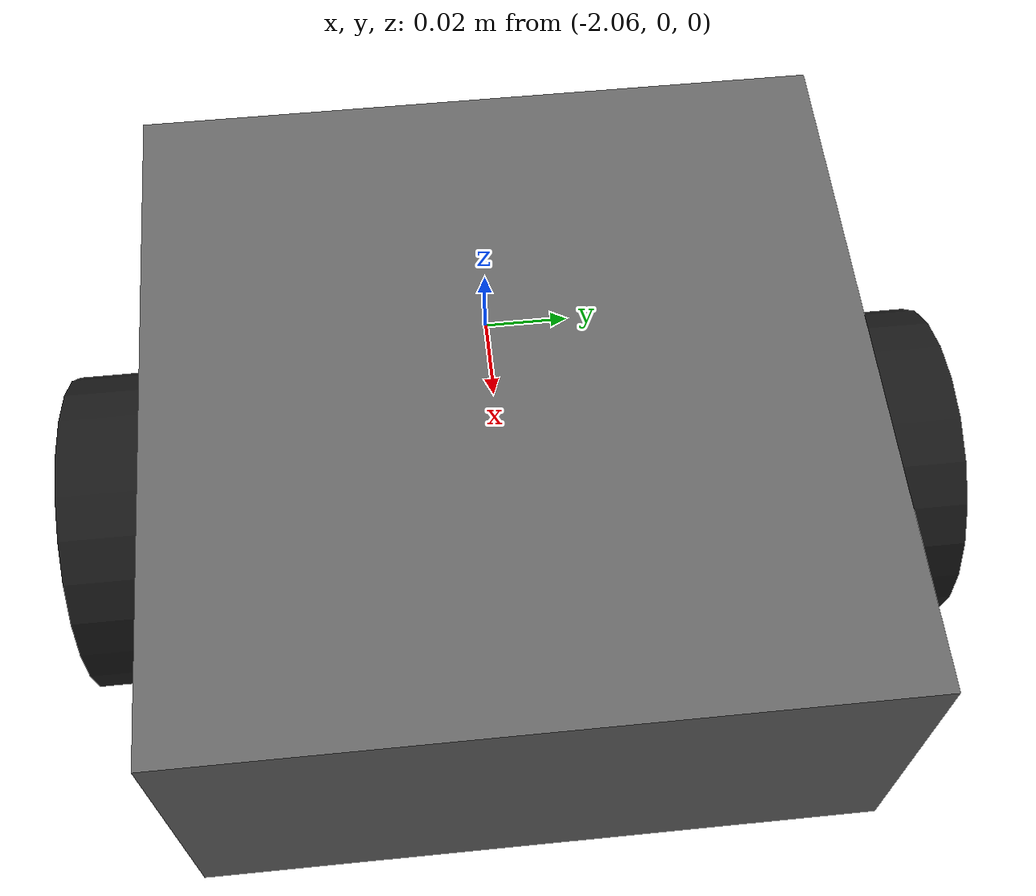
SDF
<?xml version="1.0" ?>
<sdf version="1.9">
  <model name="turtlebot3">
    <pose>-2 0 0.035 0 0 0</pose>
    <link name="base_link">
      <inertial><mass>1.0</mass><inertia><ixx>0.001</ixx><ixy>0</ixy><ixz>0</ixz><iyy>0.001</iyy><iyz>0</iyz><izz>0.001</izz></inertia></inertial>
      <visual name="body"><geometry><box><size>0.14 0.14 0.07</size></box></geometry><material><ambient>0.3 0.3 0.3 1</ambient><diffuse>0.4 0.4 0.4 1</diffuse></material></visual>
      <collision name="body"><geometry><box><size>0.14 0.14 0.07</size></box></geometry></collision>
      <collision name="caster"><pose>-0.05 0 -0.023 0 0 0</pose><geometry><sphere><radius>0.012</radius></sphere></geometry><surface><friction><ode><mu>0</mu><mu2>0</mu2><slip1>1</slip1><slip2>1</slip2></ode></friction></surface></collision>
    </link>
    <link name="wl"><pose relative_to="base_link">0 0.08 -0.012 -1.5708 0 0</pose><inertial><mass>0.05</mass><inertia><ixx>0.00005</ixx><ixy>0</ixy><ixz>0</ixz><iyy>0.00005</iyy><iyz>0</iyz><izz>0.00005</izz></inertia></inertial><visual name="v"><geometry><cylinder><radius>0.033</radius><length>0.018</length></cylinder></geometry><material><ambient>0.1 0.1 0.1 1</ambient></material></visual><collision name="c"><geometry><cylinder><radius>0.033</radius><length>0.018</length></cylinder></geometry><surface><friction><ode><mu>1.5</mu><mu2>1.5</mu2></ode></friction></surface></collision></link>
    <link name="wr"><pose relative_to="base_link">0 -0.08 -0.012 -1.5708 0 0</pose><inertial><mass>0.05</mass><inertia><ixx>0.00005</ixx><ixy>0</ixy><ixz>0</ixz><iyy>0.00005</iyy><iyz>0</iyz><izz>0.00005</izz></inertia></inertial><visual name="v"><geometry><cylinder><radius>0.033</radius><length>0.018</length></cylinder></geometry><material><ambient>0.1 0.1 0.1 1</ambient></material></visual><collision name="c"><geometry><cylinder><radius>0.033</radius><length>0.018</length></cylinder></geometry><surface><friction><ode><mu>1.5</mu><mu2>1.5</mu2></ode></friction></surface></collision></link>
    <joint name="wl_joint" type="revolute"><parent>base_link</parent><child>wl</child><axis><xyz>0 0 1</xyz></axis></joint>
    <joint name="wr_joint" type="revolute"><parent>base_link</parent><child>wr</child><axis><xyz>0 0 1</xyz></axis></joint>
    <plugin filename="gz-sim-diff-drive-system" name="gz::sim::systems::DiffDrive"><left_joint>wl_joint</left_joint><right_joint>wr_joint</right_joint><wheel_separation>0.160</wheel_separation><wheel_radius>0.033</wheel_radius><topic>ugv_cmd_vel</topic><odom_topic>ugv_odom</odom_topic><odom_publish_frequency>30</odom_publish_frequency></plugin>
  </model>
</sdf>
